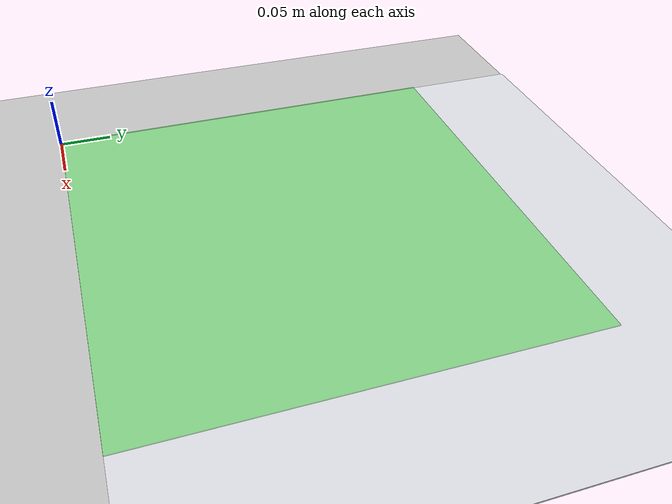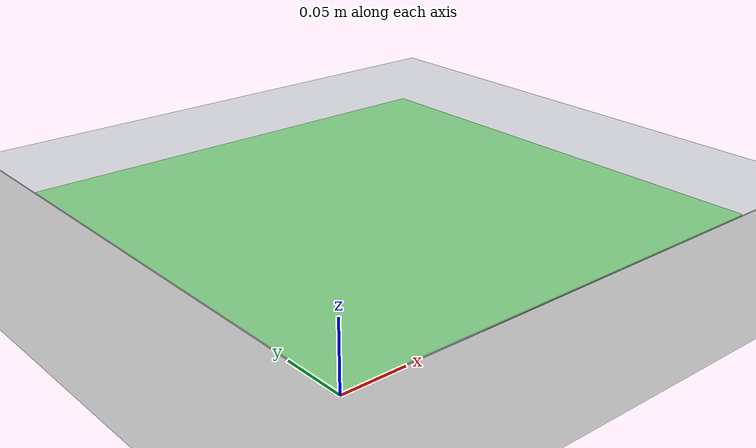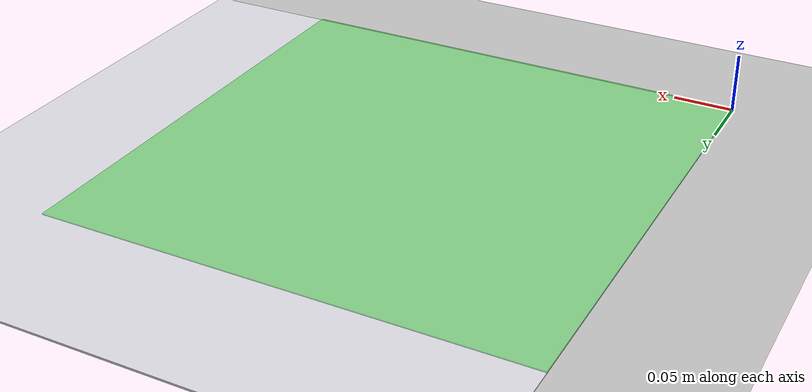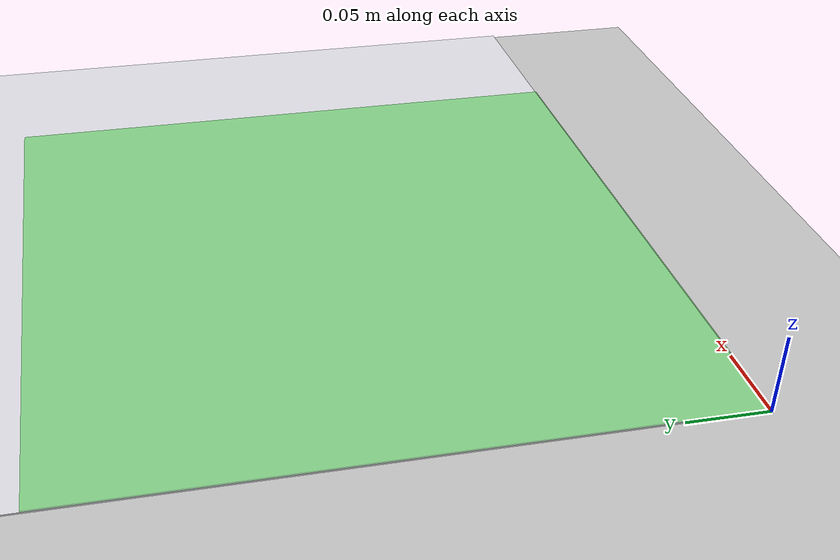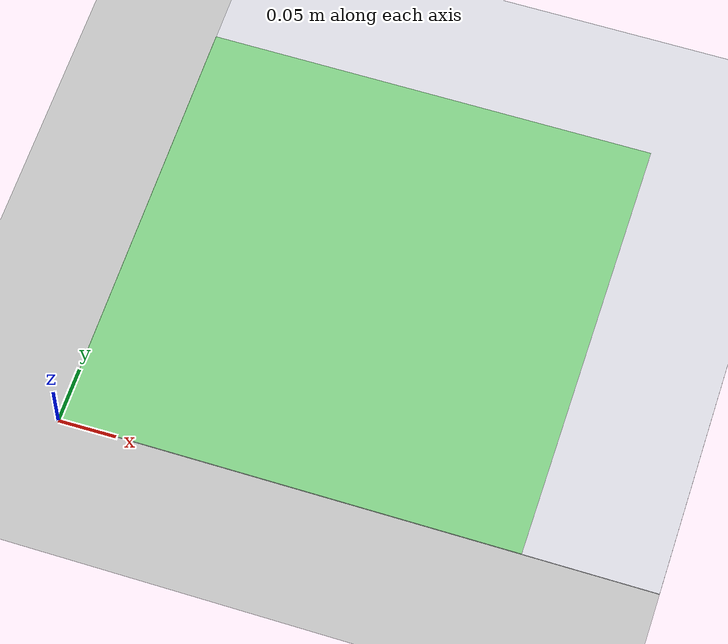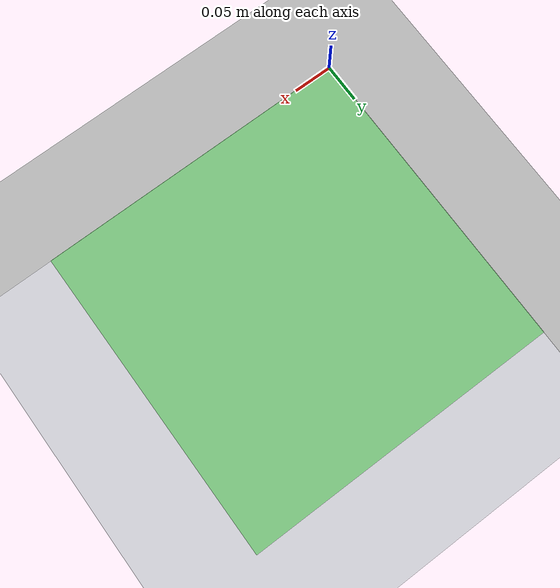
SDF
<?xml version="1.0" ?>
<sdf version="1.8">
  <world name="task1_arena">
    <physics name="1ms" type="ignored">
      <max_step_size>0.001</max_step_size>
      <real_time_factor>1.0</real_time_factor>
    </physics>
    <plugin filename="gz-sim-physics-system" name="gz::sim::systems::Physics"/>
    <plugin filename="gz-sim-user-commands-system" name="gz::sim::systems::UserCommands"/>
    <plugin filename="gz-sim-scene-broadcaster-system" name="gz::sim::systems::SceneBroadcaster"/>
    <plugin filename="gz-sim-sensors-system" name="gz::sim::systems::Sensors">
      <render_engine>ogre2</render_engine>
    </plugin>
    <plugin filename="gz-sim-imu-system" name="gz::sim::systems::Imu"/>

    <light type="directional" name="sun">
      <cast_shadows>true</cast_shadows>
      <pose>1 1 10 0 0 0</pose>
      <diffuse>0.8 0.8 0.8 1</diffuse>
      <specular>0.2 0.2 0.2 1</specular>
      <direction>-0.5 0.1 -0.9</direction>
    </light>

    <model name="ground_plane">
      <static>true</static>
      <link name="link">
        <collision name="collision">
          <geometry><plane><normal>0 0 1</normal><size>6 6</size></plane></geometry>
        </collision>
        <visual name="visual">
          <geometry><plane><normal>0 0 1</normal><size>6 6</size></plane></geometry>
          <material>
            <ambient>0.75 0.75 0.75 1</ambient>
            <diffuse>0.75 0.75 0.75 1</diffuse>
          </material>
        </visual>
      </link>
    </model>

    <!-- 2.0m x 2.0m placement zone, corner at world (0,0). -->
    <model name="arena_zone">
      <static>true</static>
      <pose>1.0 1.0 0.0005 0 0 0</pose>
      <link name="link">
        <visual name="visual">
          <geometry><box><size>2.0 2.0 0.001</size></box></geometry>
          <material>
            <ambient>0.85 0.85 0.88 1</ambient>
            <diffuse>0.85 0.85 0.88 1</diffuse>
          </material>
        </visual>
      </link>
    </model>

    <!-- 40cm x 40cm start box, corner at world (0,0). -->
    <model name="carpark_zone">
      <static>true</static>
      <pose>0.20 0.20 0.001 0 0 0</pose>
      <link name="link">
        <visual name="visual">
          <geometry><box><size>0.4 0.4 0.002</size></box></geometry>
          <material>
            <ambient>0.2 0.8 0.2 0.5</ambient>
            <diffuse>0.2 0.8 0.2 0.5</diffuse>
          </material>
        </visual>
      </link>
    </model>

    <!-- OBSTACLES -->

  </world>
</sdf>
